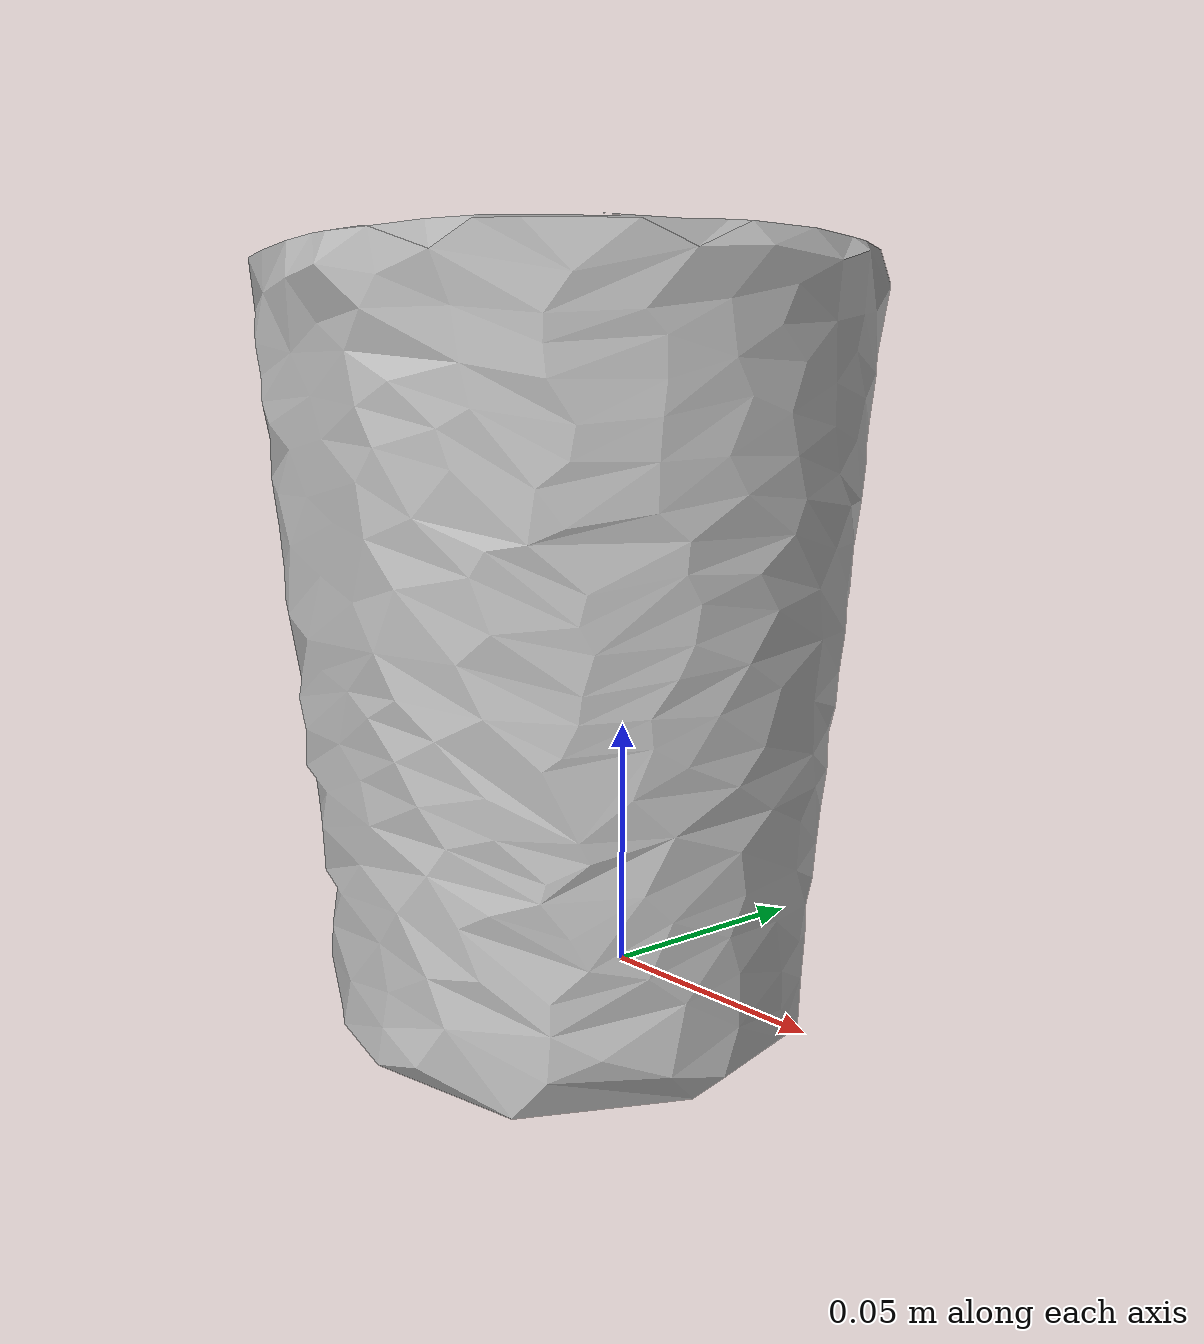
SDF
<?xml version="1.0" ?>
<sdf version="1.4">
  <model name="rolodex_jumbo_pencil_cup">
    <link name="rolodex_jumbo_pencil_cup_link">
      <inertial>
        <pose>0 0 0 0 0 0</pose>
        <mass>0.08</mass>
      </inertial>

      <visual name="rolodex_jumbo_pencil_cup_visual">
        <pose>0 0 0 0 0 0</pose>
        <material>
          <script>
            <uri>model://rolodex_jumbo_pencil_cup/materials/scripts</uri>
            <uri>model://rolodex_jumbo_pencil_cup/materials/textures</uri>
            <name>rolodex_jumbo_pencil_cup</name>
          </script>
        </material>
        <geometry>
          <mesh>
            <uri>model://rolodex_jumbo_pencil_cup/meshes/rolodex_jumbo_pencil_cup.dae</uri>
          </mesh>
        </geometry>
      </visual>

      <collision name="rolodex_jumbo_pencil_cup_collision">
        <pose>0 0 0 0 0 0</pose>
        <geometry>
          <mesh>
            <uri>model://rolodex_jumbo_pencil_cup/meshes/rolodex_jumbo_pencil_cup.dae</uri>
          </mesh>
        </geometry>
        <surface>
          <friction>
            <ode>
              <mu>0.8</mu>
              <mu2>0.8</mu2>
            </ode>
          </friction>
        </surface>
      </collision>

    </link>
  </model>
</sdf>
